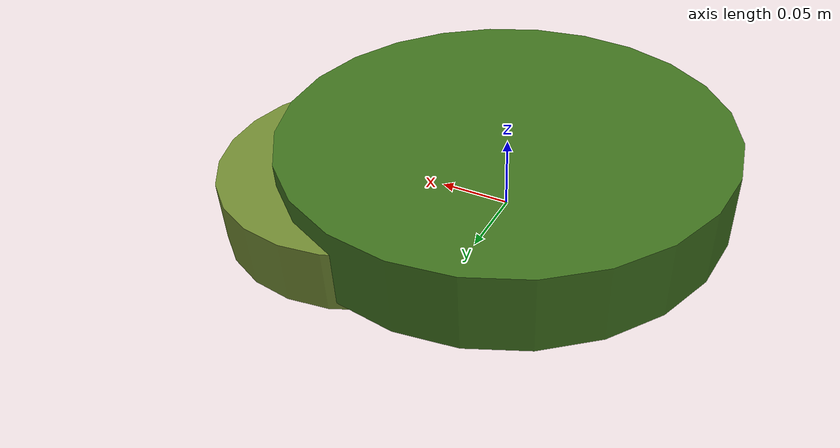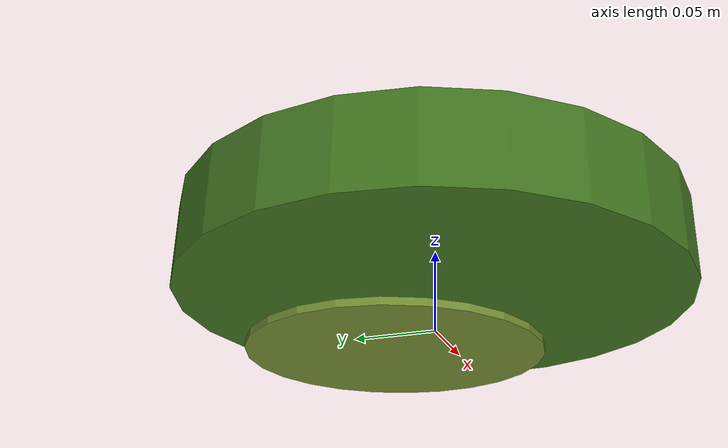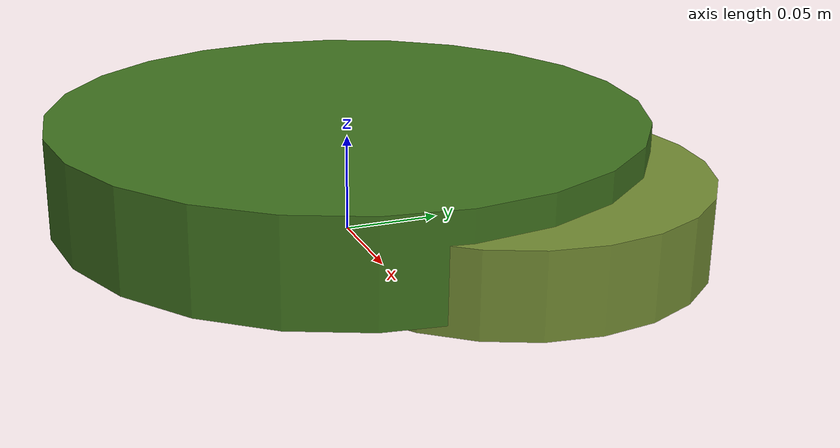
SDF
<?xml version="1.0"?>
<sdf version="1.8">
  <model name="trash_fallen_leaves">
    <static>true</static>
    <link name="trash_fallen_leaves_link">
      <inertial>
        <mass>0.05</mass>
        <inertia>
          <ixx>0.0002</ixx>
          <ixy>0.0</ixy>
          <ixz>0.0</ixz>
          <iyy>0.0002</iyy>
          <iyz>0.0</iyz>
          <izz>0.0002</izz>
        </inertia>
      </inertial>
      <collision name="trash_fallen_leaves_collision">
        <pose>0 0 0.03 0 0 0</pose>
        <geometry>
<cylinder><radius>0.15</radius><length>0.06</length></cylinder>
        </geometry>
      </collision>
    <visual name="leaf_patch_1">
      <pose>0 0 0.04 0 0 0</pose>
      <geometry>
<cylinder><radius>0.15</radius><length>0.05</length></cylinder>
      </geometry>
      <material>
        <ambient>0.25 0.45 0.12 1</ambient>
        <diffuse>0.25 0.45 0.12 1</diffuse>
        <specular>0.1 0.1 0.1 1</specular>
      </material>
    </visual>
    <visual name="leaf_patch_2">
      <pose>0.07 0.05 0.03 0 0 0</pose>
      <geometry>
<cylinder><radius>0.10</radius><length>0.04</length></cylinder>
      </geometry>
      <material>
        <ambient>0.45 0.55 0.20 1</ambient>
        <diffuse>0.45 0.55 0.20 1</diffuse>
        <specular>0.1 0.1 0.1 1</specular>
      </material>
    </visual>
    </link>
  </model>
</sdf>
